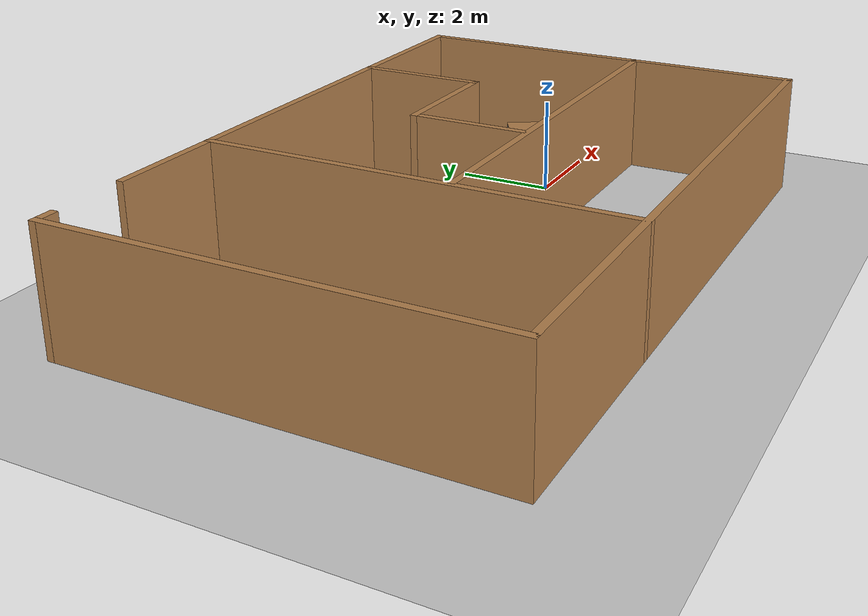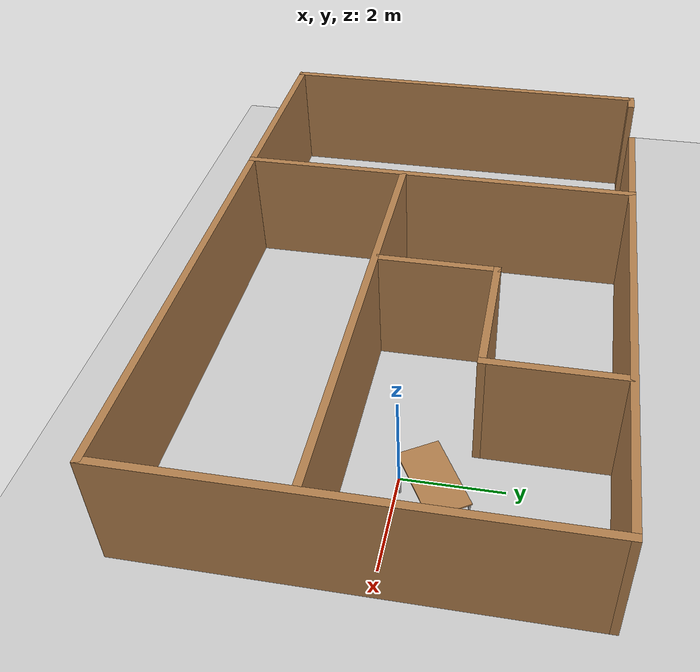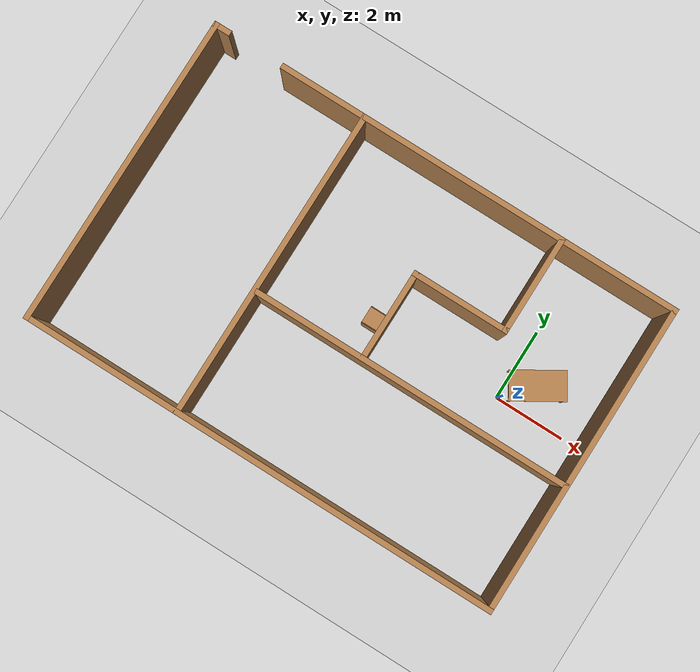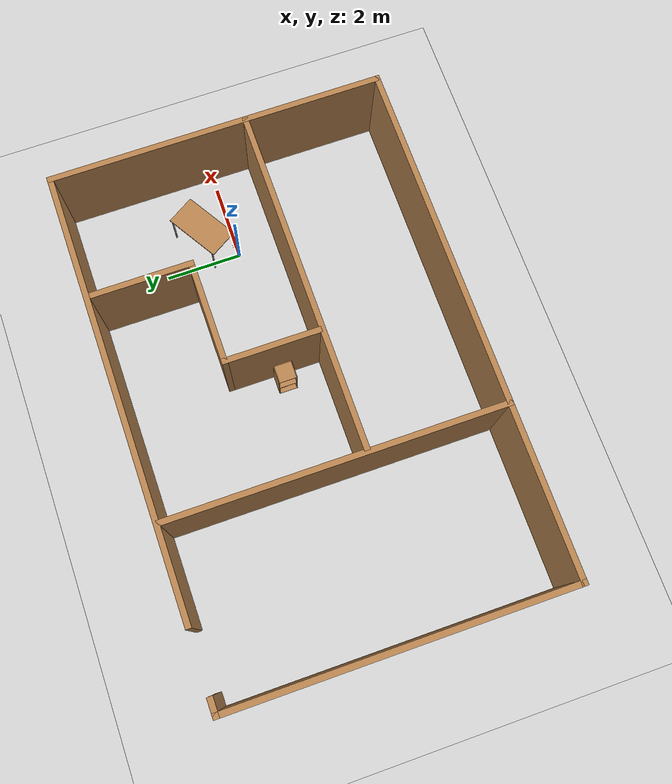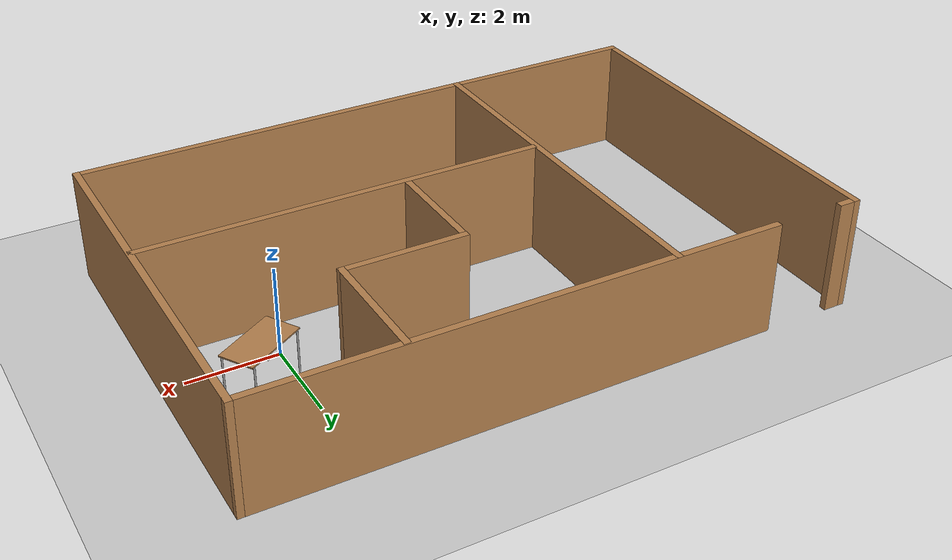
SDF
<sdf version="1.7">
 <world name="default">
  <light name="sun" type="directional">
   <pose>0 0 10 0 -0 0</pose>
   <diffuse>0.8 0.8 0.8 1</diffuse>
   <specular>0.2 0.2 0.2 1</specular>
   <attenuation>
    <range>1000</range>
    <constant>0.9</constant>
    <linear>0.01</linear>
    <quadratic>0.001</quadratic>
   </attenuation>
   <direction>-0.5 0.1 -0.9</direction>
   <spot><inner_angle>0</inner_angle><outer_angle>0</outer_angle><falloff>0</falloff></spot>
  </light>
  <model name="ground_plane">
   <static>1</static>
   <link name="link">
    <collision name="collision">
     <geometry><plane><normal>0 0 1</normal><size>100 100</size></plane></geometry>
     <surface><friction><ode><mu>100</mu><mu2>50</mu2></ode></friction></surface>
    </collision>
    <visual name="visual">
     <cast_shadows>0</cast_shadows>
     <geometry><plane><normal>0 0 1</normal><size>100 100</size></plane></geometry>
     <material>
      <script><uri>file://media/materials/scripts/gazebo.material</uri><name>Gazebo/Grey</name></script>
     </material>
    </visual>
   </link>
  </model>
  <gravity>0 0 -9.8</gravity>
  <magnetic_field>6e-06 2.3e-05 -4.2e-05</magnetic_field>
  <atmosphere type="adiabatic"/>
  <physics type="ode">
   <max_step_size>0.001</max_step_size>
   <real_time_factor>1</real_time_factor>
   <real_time_update_rate>1000</real_time_update_rate>
  </physics>
  <scene><ambient>0.4 0.4 0.4 1</ambient><background>0.7 0.7 0.7 1</background><shadows>1</shadows></scene>
  <audio><device>default</device></audio>
  <spherical_coordinates>
   <surface_model>EARTH_WGS84</surface_model>
   <latitude_deg>0</latitude_deg>
   <longitude_deg>0</longitude_deg>
   <elevation>0</elevation>
   <heading_deg>0</heading_deg>
  </spherical_coordinates>
  <model name="closed_room">
   <pose>-4.24447 -0.320858 0 0 -0 0</pose>
   <link name="Wall_11">
    <collision name="Wall_11_Collision">
     <geometry><box><size>0.5 0.15 2.5</size></box></geometry>
     <pose>0 0 1.25 0 -0 0</pose>
    </collision>
    <visual name="Wall_11_Visual">
     <pose>0 0 1.25 0 -0 0</pose>
     <geometry><box><size>0.5 0.15 2.5</size></box></geometry>
     <material>
      <script><uri>file://media/materials/scripts/gazebo.material</uri><name>Gazebo/Wood</name></script>
      <ambient>1 1 1 1</ambient>
     </material>
     <meta><layer>0</layer></meta>
    </visual>
    <pose>-6.5 4.30012 0 0 -0 0</pose>
   </link>
   <link name="Wall_13">
    <collision name="Wall_13_Collision">
     <geometry><box><size>8.75 0.15 2.5</size></box></geometry>
     <pose>0 0 1.25 0 -0 0</pose>
    </collision>
    <visual name="Wall_13_Visual">
     <pose>0 0 1.25 0 -0 0</pose>
     <geometry><box><size>8.75 0.15 2.5</size></box></geometry>
     <material>
      <script><uri>file://media/materials/scripts/gazebo.material</uri><name>Gazebo/Wood</name></script>
      <ambient>1 1 1 1</ambient>
     </material>
     <meta><layer>0</layer></meta>
    </visual>
    <pose>-2.31389 -0.000124 0 0 -0 1.5708</pose>
   </link>
   <link name="Wall_21">
    <collision name="Wall_21_Collision">
     <geometry><box><size>9 0.15 2.5</size></box></geometry>
     <pose>0 0 1.25 0 -0 0</pose>
    </collision>
    <visual name="Wall_21_Visual">
     <pose>0 0 1.25 0 -0 0</pose>
     <geometry><box><size>9 0.15 2.5</size></box></geometry>
     <material>
      <script><uri>file://media/materials/scripts/gazebo.material</uri><name>Gazebo/Wood</name></script>
      <ambient>1 1 1 1</ambient>
     </material>
     <meta><layer>0</layer></meta>
    </visual>
    <pose>2.21168 -0.775636 0 0 -0 0</pose>
   </link>
   <link name="Wall_27">
    <collision name="Wall_27_Collision">
     <geometry><box><size>2.75 0.15 2.5</size></box></geometry>
     <pose>0 0 1.25 0 -0 0</pose>
    </collision>
    <visual name="Wall_27_Visual">
     <pose>0 0 1.25 0 -0 0</pose>
     <geometry><box><size>2.75 0.15 2.5</size></box></geometry>
     <material>
      <script><uri>file://media/materials/scripts/gazebo.material</uri><name>Gazebo/Wood</name></script>
      <ambient>1 1 1 1</ambient>
     </material>
     <meta><layer>0</layer></meta>
    </visual>
    <pose>3.41848 2.97287 0 0 -0 -1.5708</pose>
   </link>
   <link name="Wall_28">
    <collision name="Wall_28_Collision">
     <geometry><box><size>2.75 0.15 2.5</size></box></geometry>
     <pose>0 0 1.25 0 -0 0</pose>
    </collision>
    <visual name="Wall_28_Visual">
     <pose>0 0 1.25 0 -0 0</pose>
     <geometry><box><size>2.75 0.15 2.5</size></box></geometry>
     <material>
      <script><uri>file://media/materials/scripts/gazebo.material</uri><name>Gazebo/Wood</name></script>
      <ambient>1 1 1 1</ambient>
     </material>
     <meta><layer>0</layer></meta>
    </visual>
    <pose>2.11848 1.67287 0 0 -0 3.14159</pose>
   </link>
   <link name="Wall_29">
    <collision name="Wall_29_Collision">
     <geometry><box><size>2.5 0.15 2.5</size></box></geometry>
     <pose>0 0 1.25 0 -0 0</pose>
    </collision>
    <visual name="Wall_29_Visual">
     <pose>0 0 1.25 0 -0 0</pose>
     <geometry><box><size>2.5 0.15 2.5</size></box></geometry>
     <material>
      <script><uri>file://media/materials/scripts/gazebo.material</uri><name>Gazebo/Wood</name></script>
      <ambient>1 1 1 1</ambient>
     </material>
     <meta><layer>0</layer></meta>
    </visual>
    <pose>0.818482 0.49787 0 0 -0 -1.5708</pose>
   </link>
   <link name="Wall_6">
    <collision name="Wall_6_Collision">
     <geometry><box><size>8.75 0.15 2.5</size></box></geometry>
     <pose>0 0 1.25 0 -0 0</pose>
    </collision>
    <visual name="Wall_6_Visual">
     <pose>0 0 1.25 0 -0 0</pose>
     <geometry><box><size>8.75 0.15 2.5</size></box></geometry>
     <material>
      <script><uri>file://media/materials/scripts/gazebo.material</uri><name>Gazebo/Wood</name></script>
      <ambient>1 1 1 1</ambient>
     </material>
     <meta><layer>0</layer></meta>
    </visual>
    <pose>-6.675 0.000124 0 0 -0 -1.5708</pose>
   </link>
   <link name="Wall_7">
    <collision name="Wall_7_Collision">
     <geometry><box><size>13.5 0.15 2.5</size></box></geometry>
     <pose>0 0 1.25 0 -0 0</pose>
    </collision>
    <visual name="Wall_7_Visual">
     <pose>0 0 1.25 0 -0 0</pose>
     <geometry><box><size>13.5 0.15 2.5</size></box></geometry>
     <material>
      <script><uri>file://media/materials/scripts/gazebo.material</uri><name>Gazebo/Wood</name></script>
      <ambient>1 1 1 1</ambient>
     </material>
     <meta><layer>0</layer></meta>
    </visual>
    <pose>0 -4.29988 0 0 -0 0</pose>
   </link>
   <link name="Wall_8">
    <collision name="Wall_8_Collision">
     <geometry><box><size>8.75 0.15 2.5</size></box></geometry>
     <pose>0 0 1.25 0 -0 0</pose>
    </collision>
    <visual name="Wall_8_Visual">
     <pose>0 0 1.25 0 -0 0</pose>
     <geometry><box><size>8.75 0.15 2.5</size></box></geometry>
     <material>
      <script><uri>file://media/materials/scripts/gazebo.material</uri><name>Gazebo/Wood</name></script>
      <ambient>1 1 1 1</ambient>
     </material>
     <meta><layer>0</layer></meta>
    </visual>
    <pose>6.675 0.000124 0 0 -0 1.5708</pose>
   </link>
   <link name="Wall_9">
    <collision name="Wall_9_Collision">
     <geometry><box><size>11.5 0.15 2.5</size></box></geometry>
     <pose>0 0 1.25 0 -0 0</pose>
    </collision>
    <visual name="Wall_9_Visual">
     <pose>0 0 1.25 0 -0 0</pose>
     <geometry><box><size>11.5 0.15 2.5</size></box></geometry>
     <material>
      <script><uri>file://media/materials/scripts/gazebo.material</uri><name>Gazebo/Wood</name></script>
      <ambient>1 1 1 1</ambient>
     </material>
     <meta><layer>0</layer></meta>
    </visual>
    <pose>1 4.30012 0 0 -0 3.14159</pose>
   </link>
   <static>1</static>
  </model>
  <model name="cabinet">
   <static>1</static>
   <link name="cabinet_bottom_plate">
    <inertial>
     <pose>0 0 -1 0 -0 0</pose>
     <inertia><ixx>2.05</ixx><ixy>0</ixy><ixz>0</ixz><iyy>2.05</iyy><iyz>0</iyz><izz>2.05</izz></inertia>
     <mass>25</mass>
    </inertial>
    <collision name="cabinet_bottom_plate_geom">
     <pose>0 0 0.01 0 -0 0</pose>
     <geometry><box><size>0.45 0.45 0.02</size></box></geometry>
    </collision>
    <visual name="cabinet_bottom_plate_geom_visual">
     <pose>0 0 0.01 0 -0 0</pose>
     <geometry><box><size>0.45 0.45 0.02</size></box></geometry>
     <material>
      <script><uri>file://media/materials/scripts/gazebo.material</uri><name>Gazebo/Wood</name></script>
     </material>
    </visual>
    <collision name="cabinet_bottom_plate_geom_cabinet_back_plate">
     <pose>0.235 0 0.51 0 -0 0</pose>
     <geometry><box><size>0.02 0.45 1.02</size></box></geometry>
    </collision>
    <visual name="cabinet_bottom_plate_geom_cabinet_back_plate_visual">
     <pose>0.235 0 0.51 0 -0 0</pose>
     <geometry><box><size>0.02 0.45 1.02</size></box></geometry>
     <material>
      <script><uri>file://media/materials/scripts/gazebo.material</uri><name>Gazebo/Wood</name></script>
     </material>
    </visual>
    <collision name="cabinet_bottom_plate_geom_cabinet_left_plate">
     <pose>0 0.235 0.51 0 -0 0</pose>
     <geometry><box><size>0.45 0.02 1.02</size></box></geometry>
    </collision>
    <visual name="cabinet_bottom_plate_geom_cabinet_left_plate_visual">
     <pose>0 0.235 0.51 0 -0 0</pose>
     <geometry><box><size>0.45 0.02 1.02</size></box></geometry>
     <material>
      <script><uri>file://media/materials/scripts/gazebo.material</uri><name>Gazebo/Wood</name></script>
     </material>
    </visual>
    <collision name="cabinet_bottom_plate_geom_cabinet_middle_plate">
     <pose>0 0 0.51 0 -0 0</pose>
     <geometry><box><size>0.45 0.45 0.02</size></box></geometry>
    </collision>
    <visual name="cabinet_bottom_plate_geom_cabinet_middle_plate_visual">
     <pose>0 0 0.51 0 -0 0</pose>
     <geometry><box><size>0.45 0.45 0.02</size></box></geometry>
     <material>
      <script><uri>file://media/materials/scripts/gazebo.material</uri><name>Gazebo/Wood</name></script>
     </material>
    </visual>
    <collision name="cabinet_bottom_plate_geom_cabinet_right_plate">
     <pose>0 -0.235 0.51 0 -0 0</pose>
     <geometry><box><size>0.45 0.02 1.02</size></box></geometry>
    </collision>
    <visual name="cabinet_bottom_plate_geom_cabinet_right_plate_visual">
     <pose>0 -0.235 0.51 0 -0 0</pose>
     <geometry><box><size>0.45 0.02 1.02</size></box></geometry>
     <material>
      <script><uri>file://media/materials/scripts/gazebo.material</uri><name>Gazebo/Wood</name></script>
     </material>
    </visual>
    <collision name="cabinet_bottom_plate_geom_cabinet_top_plate">
     <pose>0 0 1.01 0 -0 0</pose>
     <geometry><box><size>0.45 0.45 0.02</size></box></geometry>
    </collision>
    <visual name="cabinet_bottom_plate_geom_cabinet_top_plate_visual">
     <pose>0 0 1.01 0 -0 0</pose>
     <geometry><box><size>0.45 0.45 0.02</size></box></geometry>
     <material>
      <script><uri>file://media/materials/scripts/gazebo.material</uri><name>Gazebo/Wood</name></script>
     </material>
    </visual>
   </link>
   <pose>-3.74713 -0.025643 0 0 -0 0</pose>
  </model>
  <light name="sun_clone" type="directional">
   <pose>-2.34967 -0.981874 10 0 -0 0</pose>
   <diffuse>0.8 0.8 0.8 1</diffuse>
   <specular>0.2 0.2 0.2 1</specular>
   <attenuation>
    <range>1000</range>
    <constant>0.9</constant>
    <linear>0.01</linear>
    <quadratic>0.001</quadratic>
   </attenuation>
   <direction>-0.5 0.1 -0.9</direction>
  </light>
  <model name="table">
   <static>1</static>
   <link name="link">
    <collision name="surface">
     <pose>0 0 1 0 -0 0</pose>
     <geometry><box><size>1.5 0.8 0.03</size></box></geometry>
     <surface><friction><ode><mu>0.6</mu><mu2>0.6</mu2></ode></friction></surface>
    </collision>
    <visual name="visual1">
     <pose>0 0 1 0 -0 0</pose>
     <geometry><box><size>1.5 0.8 0.03</size></box></geometry>
     <material>
      <script><uri>file://media/materials/scripts/gazebo.material</uri><name>Gazebo/Wood</name></script>
     </material>
    </visual>
    <collision name="front_left_leg">
     <pose>0.68 0.38 0.5 0 -0 0</pose>
     <geometry><cylinder><radius>0.02</radius><length>1</length></cylinder></geometry>
    </collision>
    <visual name="front_left_leg">
     <pose>0.68 0.38 0.5 0 -0 0</pose>
     <geometry><cylinder><radius>0.02</radius><length>1</length></cylinder></geometry>
     <material>
      <script><uri>file://media/materials/scripts/gazebo.material</uri><name>Gazebo/Grey</name></script>
     </material>
    </visual>
    <collision name="front_right_leg">
     <pose>0.68 -0.38 0.5 0 -0 0</pose>
     <geometry><cylinder><radius>0.02</radius><length>1</length></cylinder></geometry>
    </collision>
    <visual name="front_right_leg">
     <pose>0.68 -0.38 0.5 0 -0 0</pose>
     <geometry><cylinder><radius>0.02</radius><length>1</length></cylinder></geometry>
     <material>
      <script><uri>file://media/materials/scripts/gazebo.material</uri><name>Gazebo/Grey</name></script>
     </material>
    </visual>
    <collision name="back_right_leg">
     <pose>-0.68 -0.38 0.5 0 -0 0</pose>
     <geometry><cylinder><radius>0.02</radius><length>1</length></cylinder></geometry>
    </collision>
    <visual name="back_right_leg">
     <pose>-0.68 -0.38 0.5 0 -0 0</pose>
     <geometry><cylinder><radius>0.02</radius><length>1</length></cylinder></geometry>
     <material>
      <script><uri>file://media/materials/scripts/gazebo.material</uri><name>Gazebo/Grey</name></script>
     </material>
    </visual>
    <collision name="back_left_leg">
     <pose>-0.68 0.38 0.5 0 -0 0</pose>
     <geometry><cylinder><radius>0.02</radius><length>1</length></cylinder></geometry>
    </collision>
    <visual name="back_left_leg">
     <pose>-0.68 0.38 0.5 0 -0 0</pose>
     <geometry><cylinder><radius>0.02</radius><length>1</length></cylinder></geometry>
     <material>
      <script><uri>file://media/materials/scripts/gazebo.material</uri><name>Gazebo/Grey</name></script>
     </material>
    </visual>
   </link>
   <pose>0.674882 0.752996 0 0 -0 0.546859</pose>
  </model>
  <plugin name="gazebo_ros_state" filename="libgazebo_ros_state.so"/>
 </world>
</sdf>
